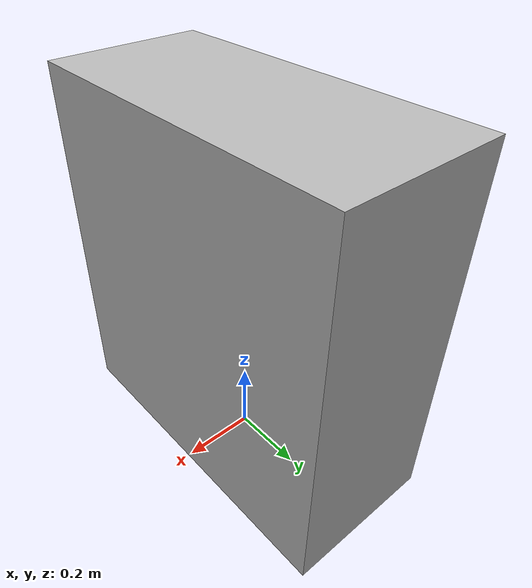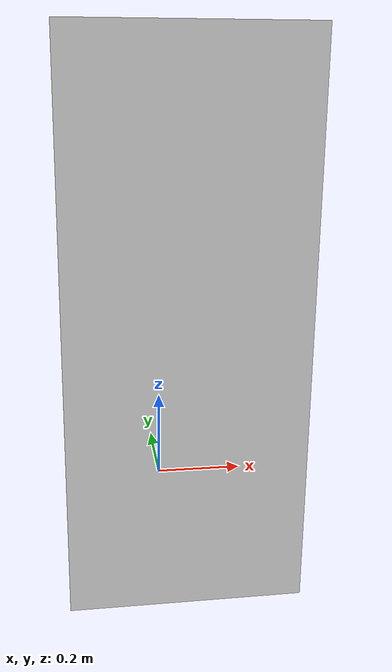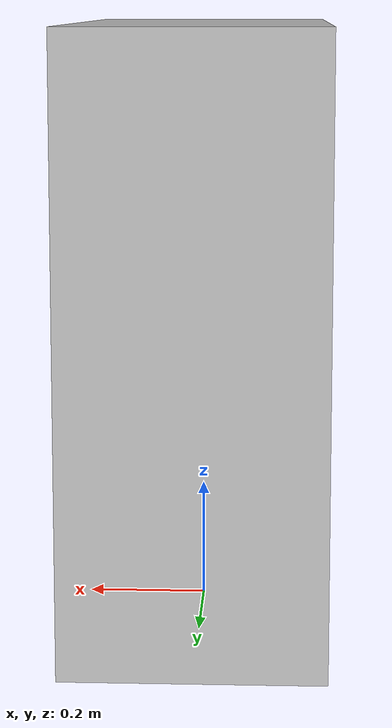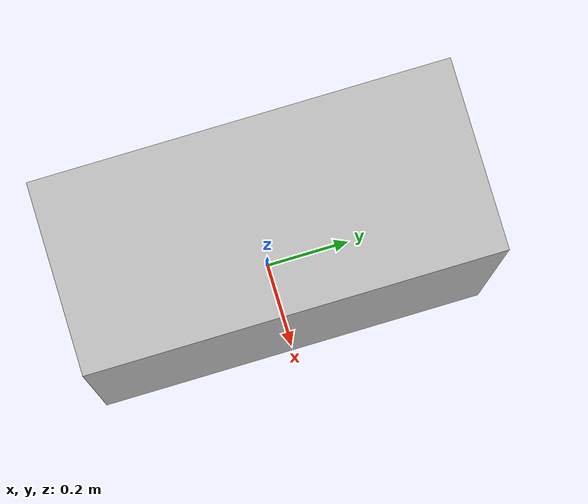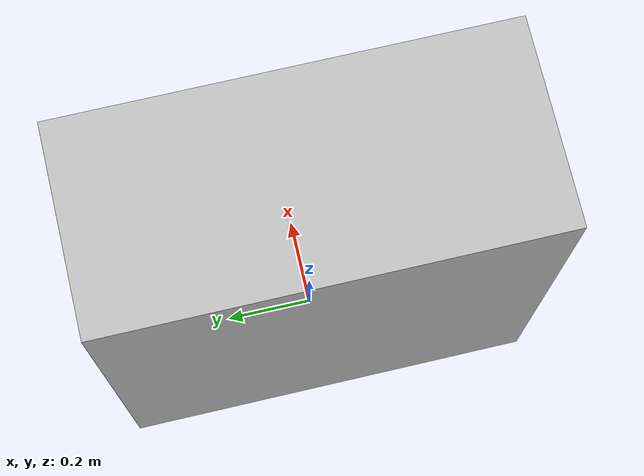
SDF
<?xml version="1.0" ?>
<sdf version="1.6">
  <model name="robotics_testlab_B/black_cabinet">
    <link name="1">
      <collision name="1">
        <geometry>
          <box>
            <size>0.42 0.92 1.0</size>
          </box>
        </geometry>
        <name>1</name>
      </collision>
      <visual name="1">
        <geometry>
          <box>
            <size>0.42 0.92 1.0</size>
          </box>
        </geometry>
        <name>1</name>
      </visual>
      <pose>0 0 0.5 0 0 0</pose>
      <name>1</name>
    </link>
    <link name="in_front_of">
      <virtual_volume name="in_front_of">
        <geometry>
          <box>
            <size>0.6 0.6 0.01</size>
          </box>
        </geometry>
        <pose>0.6 0.0 0.005 0 0 0</pose>
        <name>in_front_of</name>
      </virtual_volume>
      <name>in_front_of</name>
    </link>
    <static>true</static>
    <name>robotics_testlab_B/black_cabinet</name>
  </model>
</sdf>
